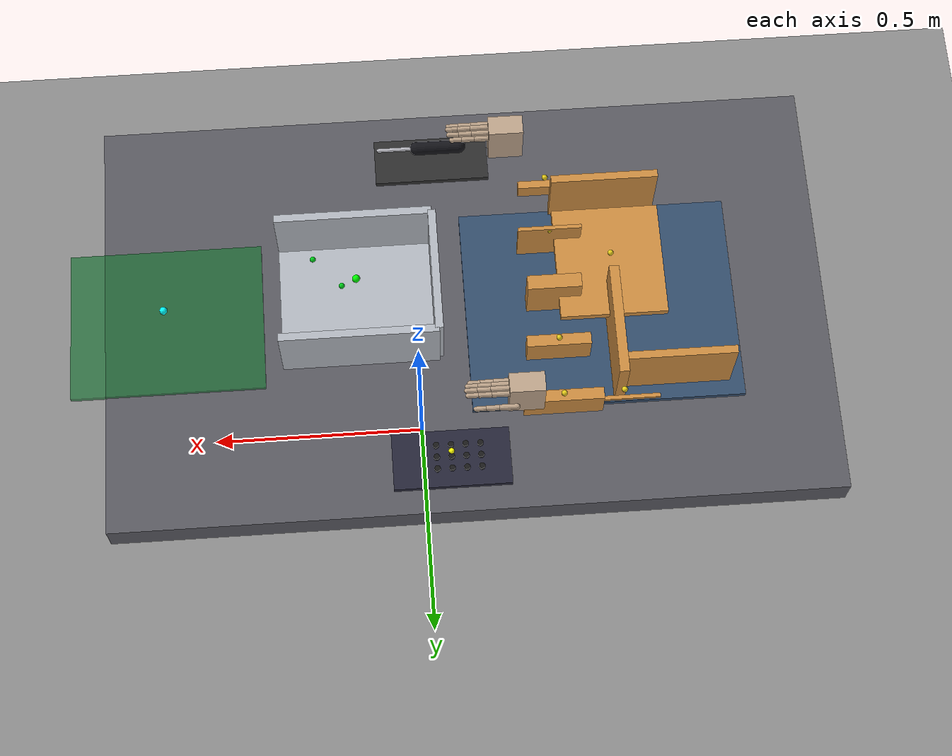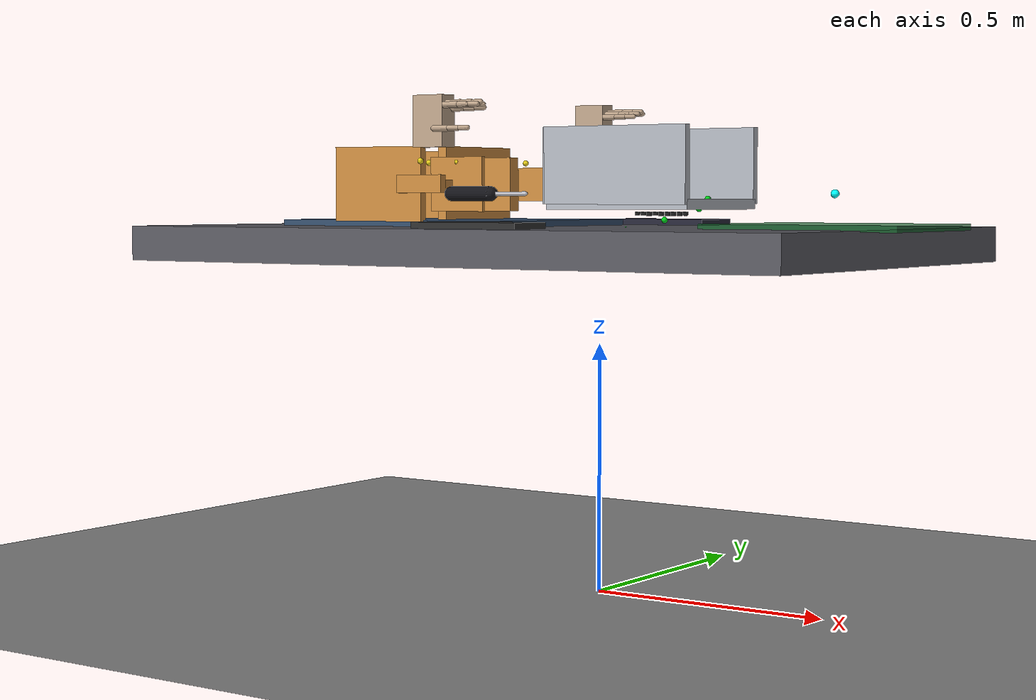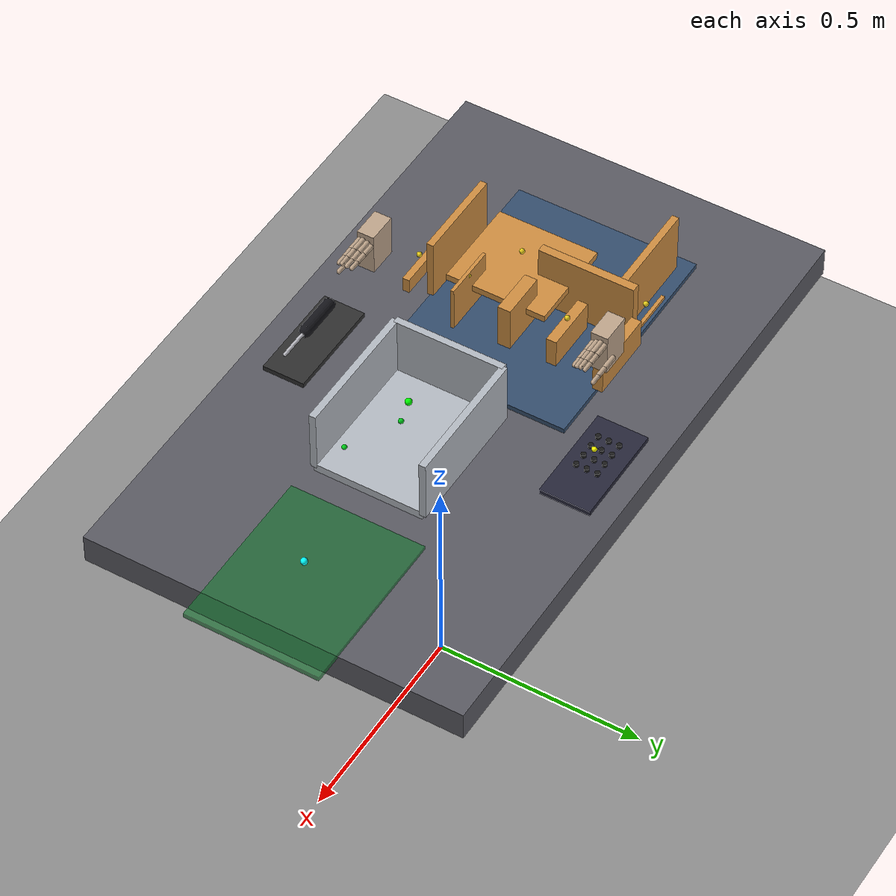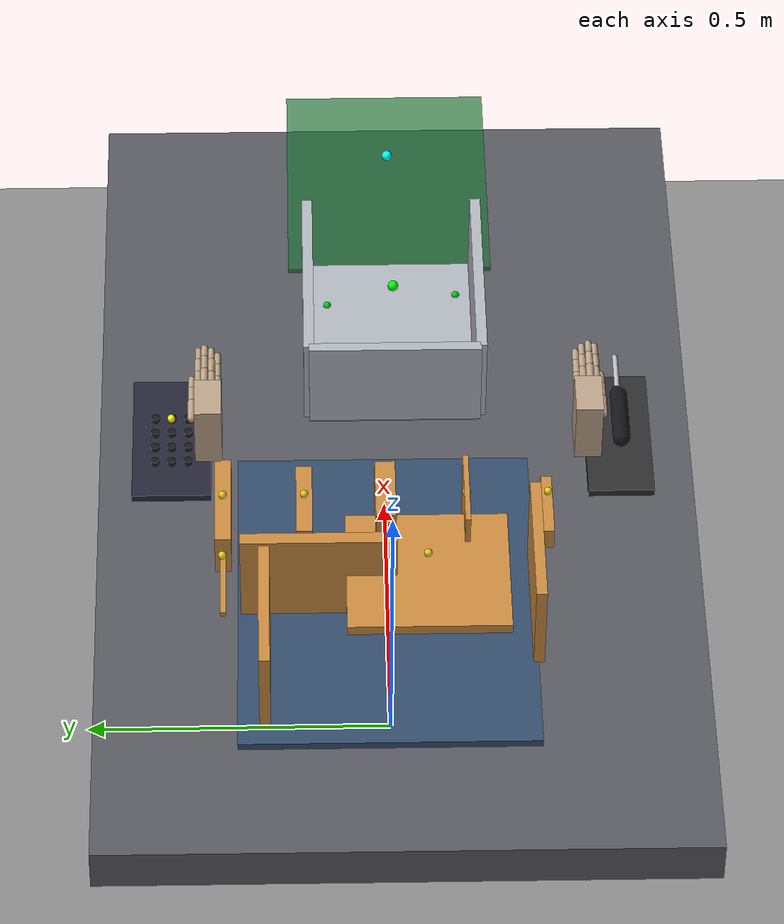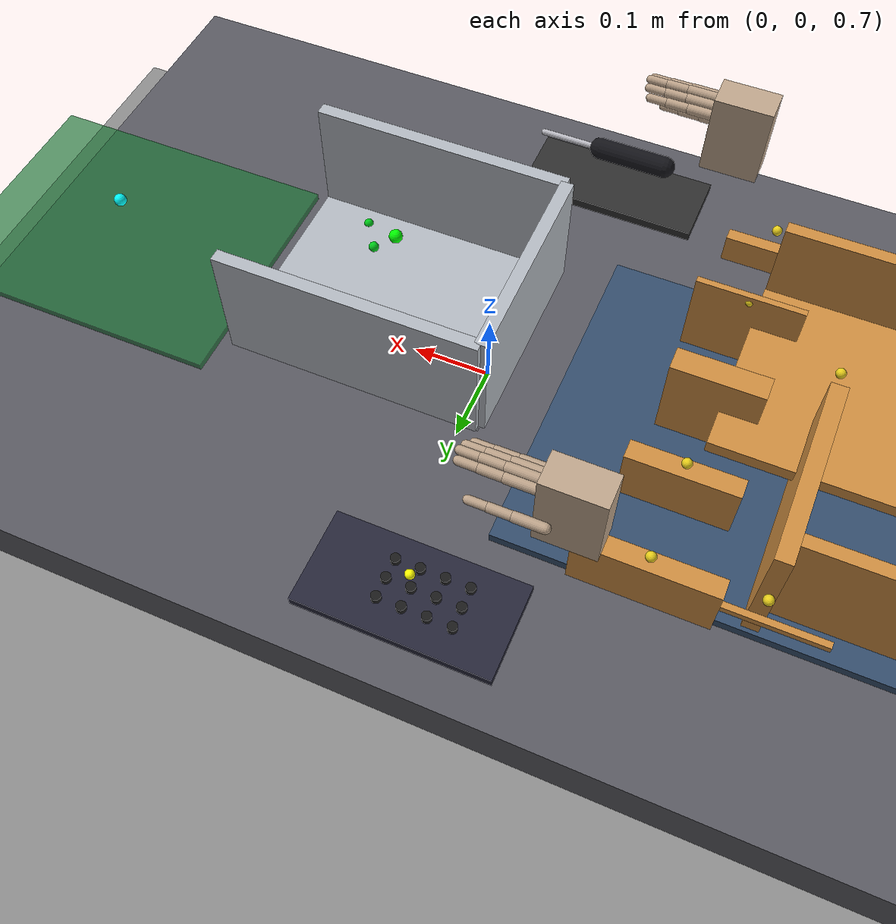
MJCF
<mujoco model="xbotdep_v1_contact_rich_workcell">
  <compiler angle="radian"/>
  <option timestep="0.002" gravity="0 0 -9.81" integrator="Euler"/>
  <default>
    <joint damping="1.0" armature="0.01"/>
    <geom condim="3" solref="0.02 1" solimp="0.8 0.9 0.001" friction="1.0 0.03 0.01"/>
    <default class="part_geom">
      <geom contype="1" conaffinity="1" rgba="0.8 0.55 0.25 1"/>
    </default>
    <default class="hand_visual">
      <geom contype="0" conaffinity="0" rgba="0.74 0.64 0.54 1"/>
    </default>
  </default>
  <worldbody>
    <light name="key_light" pos="-1 -1 3" dir="1 1 -2"/>
    <geom name="floor" type="plane" size="2 2 0.02" pos="0 0 0" rgba="0.55 0.55 0.55 1"/>
    <geom name="worktable" type="box" size="0.75 0.45 0.035" pos="-0.10 0 0.70" rgba="0.35 0.35 0.38 1"/>
    <body name="empty_chassis" pos="0.12 0 0.78">
      <geom name="chassis_base" type="box" size="0.16 0.13 0.010" rgba="0.70 0.72 0.75 1"/>
      <geom name="chassis_left_wall" type="box" size="0.16 0.008 0.075" pos="0 0.13 0.075" rgba="0.70 0.72 0.75 1"/>
      <geom name="chassis_right_wall" type="box" size="0.16 0.008 0.075" pos="0 -0.13 0.075" rgba="0.70 0.72 0.75 1"/>
      <geom name="chassis_back_wall" type="box" size="0.008 0.13 0.075" pos="-0.16 0 0.075" rgba="0.70 0.72 0.75 1"/>
      <site name="chassis_reference" pos="0 0 0.12" size="0.008" rgba="0 1 0 1"/>
      <site name="target_motherboard_tray_bracket" pos="-0.020 0.030 -0.050" size="0.006" rgba="0 0.8 0.1 1"/>
      <site name="target_psu_bracket" pos="-0.020 -0.060 -0.050" size="0.006" rgba="0 0.8 0.1 1"/>
      <site name="target_fan_module" pos="0.050 0.100 -0.010" size="0.006" rgba="0 0.8 0.1 1"/>
      <site name="target_dust_filter" pos="0.070 0.100 0.010" size="0.006" rgba="0 0.8 0.1 1"/>
      <site name="target_front_io_panel" pos="0.090 -0.100 0.010" size="0.006" rgba="0 0.8 0.1 1"/>
      <site name="target_front_io_cable" pos="0.080 -0.080 -0.030" size="0.006" rgba="0 0.8 0.1 1"/>
      <site name="target_front_panel" pos="0.145 0.000 0.000" size="0.006" rgba="0 0.8 0.1 1"/>
      <site name="target_top_cover" pos="0.030 0.000 0.090" size="0.006" rgba="0 0.8 0.1 1"/>
      <site name="target_left_side_cover" pos="0.030 0.130 0.010" size="0.006" rgba="0 0.8 0.1 1"/>
      <site name="target_right_side_cover" pos="0.030 -0.130 0.010" size="0.006" rgba="0 0.8 0.1 1"/>
    </body>
    <geom name="material_station_table" type="box" size="0.28 0.22 0.012" pos="-0.38 0.02 0.735" rgba="0.20 0.30 0.42 1"/>
    <site name="station_motherboard_tray_bracket" pos="-0.280 0.260 0.865" size="0.006" rgba="0.9 0.8 0.1 1"/>
    <body name="motherboard_tray_bracket" pos="-0.280 0.260 0.820"><joint name="motherboard_tray_bracket_free" type="free" damping="1.0"/><geom name="motherboard_tray_bracket_geom" class="part_geom" type="box" size="0.080 0.012 0.035" mass="0.12"/></body>
    <site name="station_psu_bracket" pos="-0.280 0.140 0.865" size="0.006" rgba="0.9 0.8 0.1 1"/>
    <body name="psu_bracket" pos="-0.280 0.140 0.820"><joint name="psu_bracket_free" type="free" damping="1.0"/><geom name="psu_bracket_geom" class="part_geom" type="box" size="0.065 0.012 0.035" mass="0.12"/></body>
    <site name="station_fan_module" pos="-0.280 0.020 0.865" size="0.006" rgba="0.9 0.8 0.1 1"/>
    <body name="fan_module" pos="-0.280 0.020 0.820"><joint name="fan_module_free" type="free" damping="1.0"/><geom name="fan_module_geom" class="part_geom" type="box" size="0.055 0.015 0.055" mass="0.12"/></body>
    <site name="station_dust_filter" pos="-0.280 -0.100 0.865" size="0.006" rgba="0.9 0.8 0.1 1"/>
    <body name="dust_filter" pos="-0.280 -0.100 0.820"><joint name="dust_filter_free" type="free" damping="1.0"/><geom name="dust_filter_geom" class="part_geom" type="box" size="0.065 0.004 0.055" mass="0.12"/></body>
    <site name="station_front_io_panel" pos="-0.280 -0.220 0.865" size="0.006" rgba="0.9 0.8 0.1 1"/>
    <body name="front_io_panel" pos="-0.280 -0.220 0.820"><joint name="front_io_panel_free" type="free" damping="1.0"/><geom name="front_io_panel_geom" class="part_geom" type="box" size="0.055 0.008 0.018" mass="0.12"/></body>
    <site name="station_front_io_cable" pos="-0.400 0.260 0.865" size="0.006" rgba="0.9 0.8 0.1 1"/>
    <body name="front_io_cable" pos="-0.400 0.260 0.820"><joint name="front_io_cable_free" type="free" damping="1.0"/><geom name="front_io_cable_geom" class="part_geom" type="box" size="0.075 0.004 0.004" mass="0.12"/></body>
    <site name="station_front_panel" pos="-0.400 0.120 0.865" size="0.006" rgba="0.9 0.8 0.1 1"/>
    <body name="front_panel" pos="-0.400 0.120 0.820"><joint name="front_panel_free" type="free" damping="1.0"/><geom name="front_panel_geom" class="part_geom" type="box" size="0.010 0.115 0.080" mass="0.12"/></body>
    <site name="station_top_cover" pos="-0.400 -0.040 0.865" size="0.006" rgba="0.9 0.8 0.1 1"/>
    <body name="top_cover" pos="-0.400 -0.040 0.820"><joint name="top_cover_free" type="free" damping="1.0"/><geom name="top_cover_geom" class="part_geom" type="box" size="0.110 0.120 0.008" mass="0.12"/></body>
    <site name="station_left_side_cover" pos="-0.400 -0.200 0.865" size="0.006" rgba="0.9 0.8 0.1 1"/>
    <body name="left_side_cover" pos="-0.400 -0.200 0.820"><joint name="left_side_cover_free" type="free" damping="1.0"/><geom name="left_side_cover_geom" class="part_geom" type="box" size="0.110 0.008 0.075" mass="0.12"/></body>
    <site name="station_right_side_cover" pos="-0.520 0.200 0.865" size="0.006" rgba="0.9 0.8 0.1 1"/>
    <body name="right_side_cover" pos="-0.520 0.200 0.820"><joint name="right_side_cover_free" type="free" damping="1.0"/><geom name="right_side_cover_geom" class="part_geom" type="box" size="0.110 0.008 0.075" mass="0.12"/></body>
    <geom name="tool_station" type="box" size="0.12 0.05 0.012" pos="-0.05 -0.34 0.735" rgba="0.18 0.18 0.18 1"/>
    <site name="station_screwdriver" pos="-0.05 -0.34 0.80" size="0.006" rgba="1 0 0 1"/>
    <body name="screwdriver" pos="-0.05 -0.34 0.80"><joint name="screwdriver_free" type="free" damping="1.0"/><geom name="screwdriver_handle" type="capsule" fromto="-0.06 0 0 0.03 0 0" size="0.014" rgba="0.08 0.08 0.1 1" mass="0.08"/><geom name="screwdriver_shaft" type="capsule" fromto="0.03 0 0 0.11 0 0" size="0.004" rgba="0.75 0.75 0.78 1" mass="0.02"/></body>
    <geom name="screw_station" type="box" size="0.12 0.06 0.012" pos="-0.05 0.34 0.735" rgba="0.15 0.15 0.22 1"/>
    <site name="screw_bin" pos="-0.05 0.34 0.79" size="0.006" rgba="1 1 0 1"/>
    <geom name="screw_01_visual" type="cylinder" size="0.006 0.004" pos="-0.110 0.315 0.758" rgba="0.1 0.1 0.1 1"/><geom name="screw_02_visual" type="cylinder" size="0.006 0.004" pos="-0.080 0.315 0.758" rgba="0.1 0.1 0.1 1"/><geom name="screw_03_visual" type="cylinder" size="0.006 0.004" pos="-0.050 0.315 0.758" rgba="0.1 0.1 0.1 1"/><geom name="screw_04_visual" type="cylinder" size="0.006 0.004" pos="-0.020 0.315 0.758" rgba="0.1 0.1 0.1 1"/><geom name="screw_05_visual" type="cylinder" size="0.006 0.004" pos="-0.110 0.340 0.758" rgba="0.1 0.1 0.1 1"/><geom name="screw_06_visual" type="cylinder" size="0.006 0.004" pos="-0.080 0.340 0.758" rgba="0.1 0.1 0.1 1"/><geom name="screw_07_visual" type="cylinder" size="0.006 0.004" pos="-0.050 0.340 0.758" rgba="0.1 0.1 0.1 1"/><geom name="screw_08_visual" type="cylinder" size="0.006 0.004" pos="-0.020 0.340 0.758" rgba="0.1 0.1 0.1 1"/><geom name="screw_09_visual" type="cylinder" size="0.006 0.004" pos="-0.110 0.365 0.758" rgba="0.1 0.1 0.1 1"/><geom name="screw_10_visual" type="cylinder" size="0.006 0.004" pos="-0.080 0.365 0.758" rgba="0.1 0.1 0.1 1"/><geom name="screw_11_visual" type="cylinder" size="0.006 0.004" pos="-0.050 0.365 0.758" rgba="0.1 0.1 0.1 1"/><geom name="screw_12_visual" type="cylinder" size="0.006 0.004" pos="-0.020 0.365 0.758" rgba="0.1 0.1 0.1 1"/>
    <body name="left_hand_mocap" mocap="true" pos="-0.20 0.280 0.94"><geom name="left_palm_geom" class="hand_visual" type="box" size="0.035 0.020 0.050"/><site name="left_palm_site" pos="0 0 0" size="0.008" rgba="0.1 0.1 1 1"/><body name="left_thumb_prox" pos="0.020 0.025 -0.015"><joint name="left_thumb_prox_joint" type="hinge" axis="0 1 0" range="0 1.1"/><geom name="left_thumb_prox_geom" class="hand_visual" type="capsule" fromto="0 0 0 0.032 0 0" size="0.006"/><body name="left_thumb_mid" pos="0.032 0 0"><joint name="left_thumb_mid_joint" type="hinge" axis="0 1 0" range="0 1.1"/><geom name="left_thumb_mid_geom" class="hand_visual" type="capsule" fromto="0 0 0 0.026 0 0" size="0.0055"/><body name="left_thumb_dist" pos="0.026 0 0"><joint name="left_thumb_dist_joint" type="hinge" axis="0 1 0" range="0 1.0"/><geom name="left_thumb_dist_geom" class="hand_visual" type="capsule" fromto="0 0 0 0.022 0 0" size="0.005"/></body></body></body><body name="left_index_prox" pos="0.035 0.014 0.030"><joint name="left_index_prox_joint" type="hinge" axis="0 1 0" range="0 1.1"/><geom name="left_index_prox_geom" class="hand_visual" type="capsule" fromto="0 0 0 0.032 0 0" size="0.006"/><body name="left_index_mid" pos="0.032 0 0"><joint name="left_index_mid_joint" type="hinge" axis="0 1 0" range="0 1.1"/><geom name="left_index_mid_geom" class="hand_visual" type="capsule" fromto="0 0 0 0.026 0 0" size="0.0055"/><body name="left_index_dist" pos="0.026 0 0"><joint name="left_index_dist_joint" type="hinge" axis="0 1 0" range="0 1.0"/><geom name="left_index_dist_geom" class="hand_visual" type="capsule" fromto="0 0 0 0.022 0 0" size="0.005"/></body></body></body><body name="left_middle_prox" pos="0.037 0.005 0.034"><joint name="left_middle_prox_joint" type="hinge" axis="0 1 0" range="0 1.1"/><geom name="left_middle_prox_geom" class="hand_visual" type="capsule" fromto="0 0 0 0.032 0 0" size="0.006"/><body name="left_middle_mid" pos="0.032 0 0"><joint name="left_middle_mid_joint" type="hinge" axis="0 1 0" range="0 1.1"/><geom name="left_middle_mid_geom" class="hand_visual" type="capsule" fromto="0 0 0 0.026 0 0" size="0.0055"/><body name="left_middle_dist" pos="0.026 0 0"><joint name="left_middle_dist_joint" type="hinge" axis="0 1 0" range="0 1.0"/><geom name="left_middle_dist_geom" class="hand_visual" type="capsule" fromto="0 0 0 0.022 0 0" size="0.005"/></body></body></body><body name="left_ring_prox" pos="0.035 -0.005 0.030"><joint name="left_ring_prox_joint" type="hinge" axis="0 1 0" range="0 1.1"/><geom name="left_ring_prox_geom" class="hand_visual" type="capsule" fromto="0 0 0 0.032 0 0" size="0.006"/><body name="left_ring_mid" pos="0.032 0 0"><joint name="left_ring_mid_joint" type="hinge" axis="0 1 0" range="0 1.1"/><geom name="left_ring_mid_geom" class="hand_visual" type="capsule" fromto="0 0 0 0.026 0 0" size="0.0055"/><body name="left_ring_dist" pos="0.026 0 0"><joint name="left_ring_dist_joint" type="hinge" axis="0 1 0" range="0 1.0"/><geom name="left_ring_dist_geom" class="hand_visual" type="capsule" fromto="0 0 0 0.022 0 0" size="0.005"/></body></body></body><body name="left_little_prox" pos="0.030 -0.014 0.024"><joint name="left_little_prox_joint" type="hinge" axis="0 1 0" range="0 1.1"/><geom name="left_little_prox_geom" class="hand_visual" type="capsule" fromto="0 0 0 0.032 0 0" size="0.006"/><body name="left_little_mid" pos="0.032 0 0"><joint name="left_little_mid_joint" type="hinge" axis="0 1 0" range="0 1.1"/><geom name="left_little_mid_geom" class="hand_visual" type="capsule" fromto="0 0 0 0.026 0 0" size="0.0055"/><body name="left_little_dist" pos="0.026 0 0"><joint name="left_little_dist_joint" type="hinge" axis="0 1 0" range="0 1.0"/><geom name="left_little_dist_geom" class="hand_visual" type="capsule" fromto="0 0 0 0.022 0 0" size="0.005"/></body></body></body></body>
    <body name="right_hand_mocap" mocap="true" pos="-0.20 -0.280 0.94"><geom name="right_palm_geom" class="hand_visual" type="box" size="0.035 0.020 0.050"/><site name="right_palm_site" pos="0 0 0" size="0.008" rgba="0.1 0.1 1 1"/><body name="right_thumb_prox" pos="0.020 -0.025 -0.015"><joint name="right_thumb_prox_joint" type="hinge" axis="0 1 0" range="0 1.1"/><geom name="right_thumb_prox_geom" class="hand_visual" type="capsule" fromto="0 0 0 0.032 0 0" size="0.006"/><body name="right_thumb_mid" pos="0.032 0 0"><joint name="right_thumb_mid_joint" type="hinge" axis="0 1 0" range="0 1.1"/><geom name="right_thumb_mid_geom" class="hand_visual" type="capsule" fromto="0 0 0 0.026 0 0" size="0.0055"/><body name="right_thumb_dist" pos="0.026 0 0"><joint name="right_thumb_dist_joint" type="hinge" axis="0 1 0" range="0 1.0"/><geom name="right_thumb_dist_geom" class="hand_visual" type="capsule" fromto="0 0 0 0.022 0 0" size="0.005"/></body></body></body><body name="right_index_prox" pos="0.035 -0.014 0.030"><joint name="right_index_prox_joint" type="hinge" axis="0 1 0" range="0 1.1"/><geom name="right_index_prox_geom" class="hand_visual" type="capsule" fromto="0 0 0 0.032 0 0" size="0.006"/><body name="right_index_mid" pos="0.032 0 0"><joint name="right_index_mid_joint" type="hinge" axis="0 1 0" range="0 1.1"/><geom name="right_index_mid_geom" class="hand_visual" type="capsule" fromto="0 0 0 0.026 0 0" size="0.0055"/><body name="right_index_dist" pos="0.026 0 0"><joint name="right_index_dist_joint" type="hinge" axis="0 1 0" range="0 1.0"/><geom name="right_index_dist_geom" class="hand_visual" type="capsule" fromto="0 0 0 0.022 0 0" size="0.005"/></body></body></body><body name="right_middle_prox" pos="0.037 -0.005 0.034"><joint name="right_middle_prox_joint" type="hinge" axis="0 1 0" range="0 1.1"/><geom name="right_middle_prox_geom" class="hand_visual" type="capsule" fromto="0 0 0 0.032 0 0" size="0.006"/><body name="right_middle_mid" pos="0.032 0 0"><joint name="right_middle_mid_joint" type="hinge" axis="0 1 0" range="0 1.1"/><geom name="right_middle_mid_geom" class="hand_visual" type="capsule" fromto="0 0 0 0.026 0 0" size="0.0055"/><body name="right_middle_dist" pos="0.026 0 0"><joint name="right_middle_dist_joint" type="hinge" axis="0 1 0" range="0 1.0"/><geom name="right_middle_dist_geom" class="hand_visual" type="capsule" fromto="0 0 0 0.022 0 0" size="0.005"/></body></body></body><body name="right_ring_prox" pos="0.035 0.005 0.030"><joint name="right_ring_prox_joint" type="hinge" axis="0 1 0" range="0 1.1"/><geom name="right_ring_prox_geom" class="hand_visual" type="capsule" fromto="0 0 0 0.032 0 0" size="0.006"/><body name="right_ring_mid" pos="0.032 0 0"><joint name="right_ring_mid_joint" type="hinge" axis="0 1 0" range="0 1.1"/><geom name="right_ring_mid_geom" class="hand_visual" type="capsule" fromto="0 0 0 0.026 0 0" size="0.0055"/><body name="right_ring_dist" pos="0.026 0 0"><joint name="right_ring_dist_joint" type="hinge" axis="0 1 0" range="0 1.0"/><geom name="right_ring_dist_geom" class="hand_visual" type="capsule" fromto="0 0 0 0.022 0 0" size="0.005"/></body></body></body><body name="right_little_prox" pos="0.030 0.014 0.024"><joint name="right_little_prox_joint" type="hinge" axis="0 1 0" range="0 1.1"/><geom name="right_little_prox_geom" class="hand_visual" type="capsule" fromto="0 0 0 0.032 0 0" size="0.006"/><body name="right_little_mid" pos="0.032 0 0"><joint name="right_little_mid_joint" type="hinge" axis="0 1 0" range="0 1.1"/><geom name="right_little_mid_geom" class="hand_visual" type="capsule" fromto="0 0 0 0.026 0 0" size="0.0055"/><body name="right_little_dist" pos="0.026 0 0"><joint name="right_little_dist_joint" type="hinge" axis="0 1 0" range="0 1.0"/><geom name="right_little_dist_geom" class="hand_visual" type="capsule" fromto="0 0 0 0.022 0 0" size="0.005"/></body></body></body></body>
    <geom name="output_zone" type="box" size="0.20 0.16 0.006" pos="0.52 0 0.738" rgba="0.10 0.45 0.20 0.7"/>
    <site name="output_zone_center" pos="0.52 0 0.80" size="0.008" rgba="0 1 1 1"/>
  </worldbody>
  <actuator>
    <position name="left_thumb_prox_act" joint="left_thumb_prox_joint" kp="1.0" ctrlrange="0 1.2"/>
    <position name="left_thumb_mid_act" joint="left_thumb_mid_joint" kp="1.0" ctrlrange="0 1.2"/>
    <position name="left_thumb_dist_act" joint="left_thumb_dist_joint" kp="1.0" ctrlrange="0 1.2"/>
    <position name="left_index_prox_act" joint="left_index_prox_joint" kp="1.0" ctrlrange="0 1.2"/>
    <position name="left_index_mid_act" joint="left_index_mid_joint" kp="1.0" ctrlrange="0 1.2"/>
    <position name="left_index_dist_act" joint="left_index_dist_joint" kp="1.0" ctrlrange="0 1.2"/>
    <position name="left_middle_prox_act" joint="left_middle_prox_joint" kp="1.0" ctrlrange="0 1.2"/>
    <position name="left_middle_mid_act" joint="left_middle_mid_joint" kp="1.0" ctrlrange="0 1.2"/>
    <position name="left_middle_dist_act" joint="left_middle_dist_joint" kp="1.0" ctrlrange="0 1.2"/>
    <position name="left_ring_prox_act" joint="left_ring_prox_joint" kp="1.0" ctrlrange="0 1.2"/>
    <position name="left_ring_mid_act" joint="left_ring_mid_joint" kp="1.0" ctrlrange="0 1.2"/>
    <position name="left_ring_dist_act" joint="left_ring_dist_joint" kp="1.0" ctrlrange="0 1.2"/>
    <position name="left_little_prox_act" joint="left_little_prox_joint" kp="1.0" ctrlrange="0 1.2"/>
    <position name="left_little_mid_act" joint="left_little_mid_joint" kp="1.0" ctrlrange="0 1.2"/>
    <position name="left_little_dist_act" joint="left_little_dist_joint" kp="1.0" ctrlrange="0 1.2"/>
    <position name="right_thumb_prox_act" joint="right_thumb_prox_joint" kp="1.0" ctrlrange="0 1.2"/>
    <position name="right_thumb_mid_act" joint="right_thumb_mid_joint" kp="1.0" ctrlrange="0 1.2"/>
    <position name="right_thumb_dist_act" joint="right_thumb_dist_joint" kp="1.0" ctrlrange="0 1.2"/>
    <position name="right_index_prox_act" joint="right_index_prox_joint" kp="1.0" ctrlrange="0 1.2"/>
    <position name="right_index_mid_act" joint="right_index_mid_joint" kp="1.0" ctrlrange="0 1.2"/>
    <position name="right_index_dist_act" joint="right_index_dist_joint" kp="1.0" ctrlrange="0 1.2"/>
    <position name="right_middle_prox_act" joint="right_middle_prox_joint" kp="1.0" ctrlrange="0 1.2"/>
    <position name="right_middle_mid_act" joint="right_middle_mid_joint" kp="1.0" ctrlrange="0 1.2"/>
    <position name="right_middle_dist_act" joint="right_middle_dist_joint" kp="1.0" ctrlrange="0 1.2"/>
    <position name="right_ring_prox_act" joint="right_ring_prox_joint" kp="1.0" ctrlrange="0 1.2"/>
    <position name="right_ring_mid_act" joint="right_ring_mid_joint" kp="1.0" ctrlrange="0 1.2"/>
    <position name="right_ring_dist_act" joint="right_ring_dist_joint" kp="1.0" ctrlrange="0 1.2"/>
    <position name="right_little_prox_act" joint="right_little_prox_joint" kp="1.0" ctrlrange="0 1.2"/>
    <position name="right_little_mid_act" joint="right_little_mid_joint" kp="1.0" ctrlrange="0 1.2"/>
    <position name="right_little_dist_act" joint="right_little_dist_joint" kp="1.0" ctrlrange="0 1.2"/>
  </actuator>
</mujoco>
